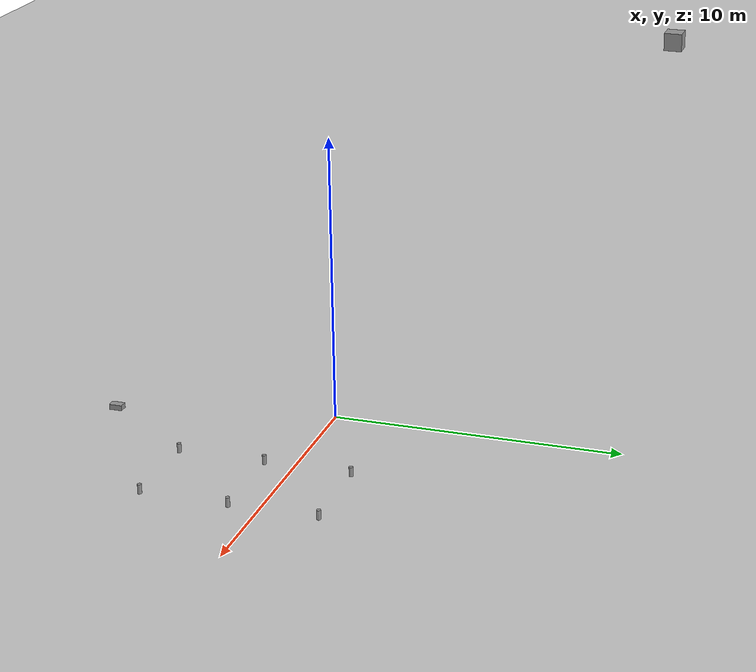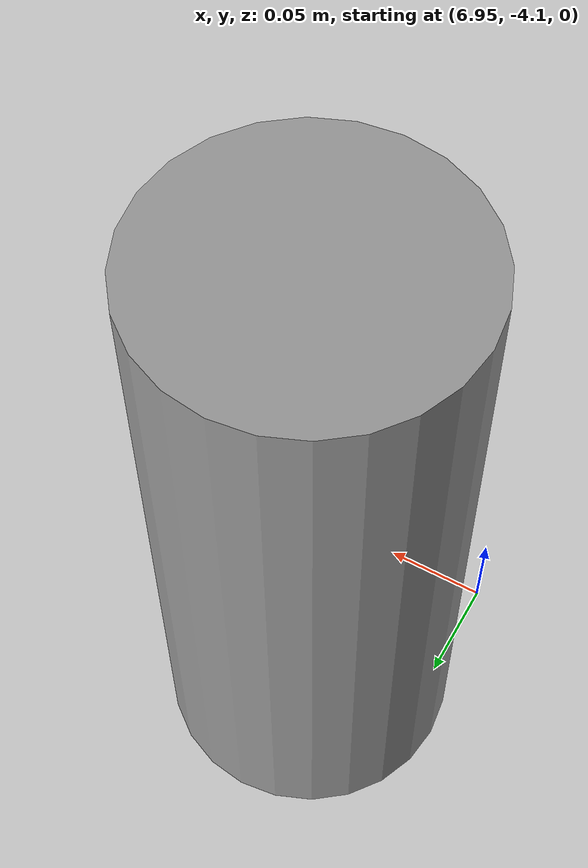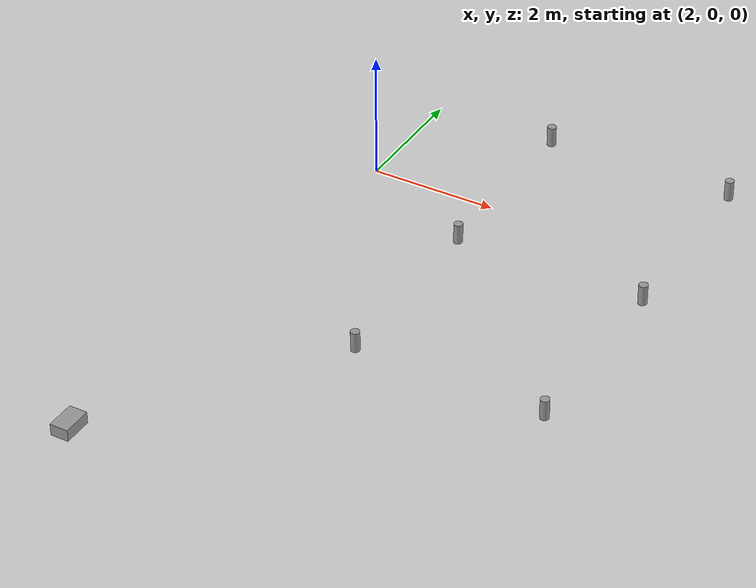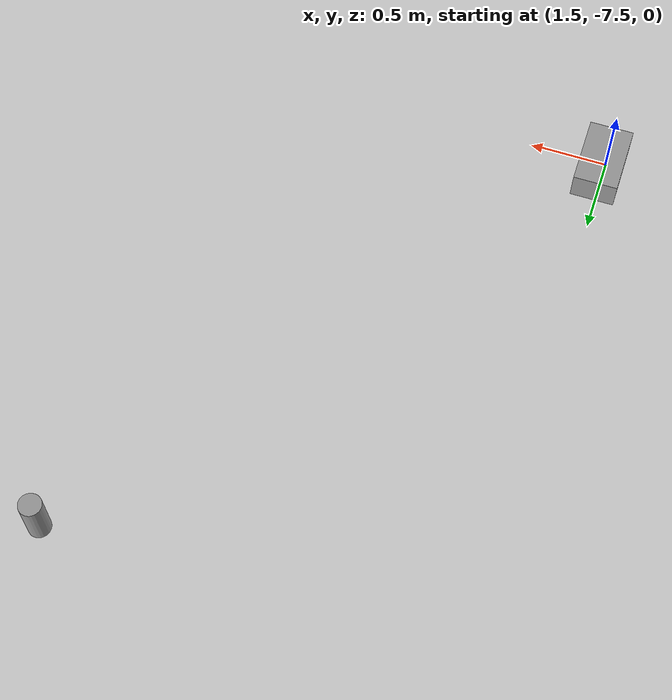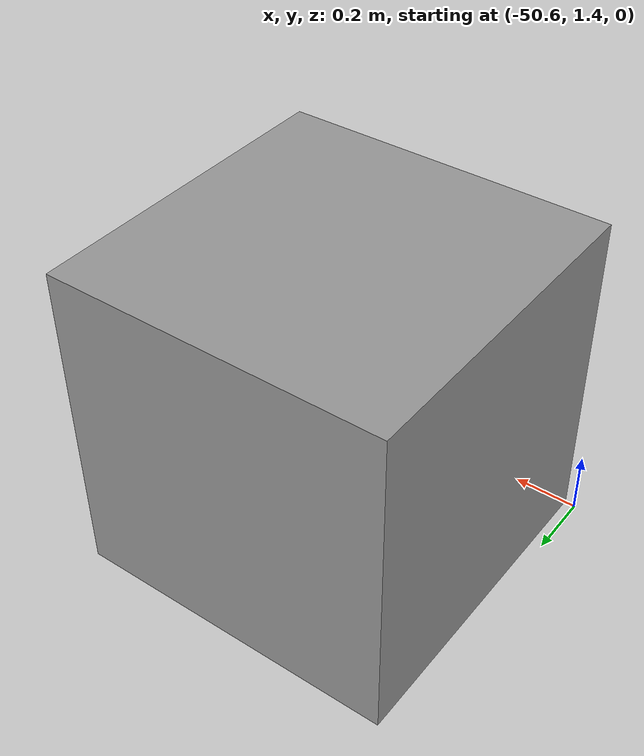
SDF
<sdf version="1.6">
 <world name="default">
  <light name="sun" type="directional">
   <pose>0 0 10 0 -0 0</pose>
   <diffuse>0.8 0.8 0.8 1</diffuse>
   <specular>0.1 0.1 0.1 1</specular>
   <attenuation>
    <range>1000</range>
    <constant>0.9</constant>
    <linear>0.01</linear>
    <quadratic>0.001</quadratic>
   </attenuation>
   <direction>-0.5 0.5 -1</direction>
  </light>
  <model name="ground_plane">
   <static>1</static>
   <link name="link">
    <collision name="collision">
     <geometry><plane><normal>0 0 1</normal><size>100 100</size></plane></geometry>
     <surface><friction><ode><mu>100</mu><mu2>50</mu2></ode></friction></surface>
    </collision>
    <visual name="visual">
     <cast_shadows>0</cast_shadows>
     <geometry><plane><normal>0 0 1</normal><size>100 100</size></plane></geometry>
     <material>
      <script><uri>file://media/materials/scripts/gazebo.material</uri><name>Gazebo/Grey</name></script>
     </material>
    </visual>
   </link>
  </model>
  <gravity>0 0 -9.8</gravity>
  <magnetic_field>6e-06 2.3e-05 -4.2e-05</magnetic_field>
  <atmosphere type="adiabatic"/>
  <physics name="default_physics" default="0" type="ode">
   <max_step_size>0.001</max_step_size>
   <real_time_factor>1</real_time_factor>
   <real_time_update_rate>1000</real_time_update_rate>
  </physics>
  <scene><ambient>0.4 0.4 0.4 1</ambient><background>0.7 0.7 0.7 1</background><shadows>1</shadows></scene>
  <spherical_coordinates>
   <surface_model>EARTH_WGS84</surface_model>
   <latitude_deg>0</latitude_deg>
   <longitude_deg>0</longitude_deg>
   <elevation>0</elevation>
   <heading_deg>0</heading_deg>
  </spherical_coordinates>
  <model name="unit_box_0">
   <pose>-50.0675 1.89431 0.499995 1e-05 -0 0</pose>
   <link name="link">
    <inertial>
     <mass>1</mass>
     <inertia>
      <ixx>0.166667</ixx>
      <ixy>0</ixy>
      <ixz>0</ixz>
      <iyy>0.166667</iyy>
      <iyz>0</iyz>
      <izz>0.166667</izz>
     </inertia>
    </inertial>
    <collision name="collision"><geometry><box><size>1 1 1</size></box></geometry></collision>
    <visual name="visual">
     <geometry><box><size>1 1 1</size></box></geometry>
     <material>
      <script><name>Gazebo/Grey</name><uri>file://media/materials/scripts/gazebo.material</uri></script>
     </material>
    </visual>
   </link>
  </model>
  <model name="unit_cylinder_0_clone_clone">
   <pose>6.99505 2.00481 0.163829 0 -0 0</pose>
   <link name="link">
    <inertial>
     <mass>1</mass>
     <inertia><ixx>0.145833</ixx><ixy>0</ixy><ixz>0</ixz><iyy>0.145833</iyy><iyz>0</iyz><izz>0.125</izz></inertia>
    </inertial>
    <collision name="collision">
     <geometry><cylinder><radius>0.069975</radius><length>0.327677</length></cylinder></geometry>
    </collision>
    <visual name="visual">
     <geometry><cylinder><radius>0.069975</radius><length>0.327677</length></cylinder></geometry>
     <material>
      <script><name>Gazebo/Grey</name><uri>file://media/materials/scripts/gazebo.material</uri></script>
     </material>
    </visual>
   </link>
  </model>
  <model name="unit_cylinder_0_clone_1">
   <pose>3.98584 -1.00636 0.163829 0 -0 0</pose>
   <link name="link">
    <inertial>
     <mass>1</mass>
     <inertia><ixx>0.145833</ixx><ixy>0</ixy><ixz>0</ixz><iyy>0.145833</iyy><iyz>0</iyz><izz>0.125</izz></inertia>
    </inertial>
    <collision name="collision">
     <geometry><cylinder><radius>0.069975</radius><length>0.327677</length></cylinder></geometry>
    </collision>
    <visual name="visual">
     <geometry><cylinder><radius>0.069975</radius><length>0.327677</length></cylinder></geometry>
     <material>
      <script><name>Gazebo/Grey</name><uri>file://media/materials/scripts/gazebo.material</uri></script>
     </material>
    </visual>
   </link>
  </model>
  <model name="unit_cylinder_0_clone_2">
   <pose>3.98443 1.98399 0.163829 0 -0 0</pose>
   <link name="link">
    <inertial>
     <mass>1</mass>
     <inertia><ixx>0.145833</ixx><ixy>0</ixy><ixz>0</ixz><iyy>0.145833</iyy><iyz>0</iyz><izz>0.125</izz></inertia>
    </inertial>
    <collision name="collision">
     <geometry><cylinder><radius>0.069975</radius><length>0.327677</length></cylinder></geometry>
    </collision>
    <visual name="visual">
     <geometry><cylinder><radius>0.069975</radius><length>0.327677</length></cylinder></geometry>
     <material>
      <script><name>Gazebo/Grey</name><uri>file://media/materials/scripts/gazebo.material</uri></script>
     </material>
    </visual>
   </link>
  </model>
  <model name="unit_cylinder_0_clone_clone_clone">
   <pose>7.02107 -1.0095 0.163829 0 -0 0</pose>
   <link name="link">
    <inertial>
     <mass>1</mass>
     <inertia><ixx>0.145833</ixx><ixy>0</ixy><ixz>0</ixz><iyy>0.145833</iyy><iyz>0</iyz><izz>0.125</izz></inertia>
    </inertial>
    <collision name="collision">
     <geometry><cylinder><radius>0.069975</radius><length>0.327677</length></cylinder></geometry>
    </collision>
    <visual name="visual">
     <geometry><cylinder><radius>0.069975</radius><length>0.327677</length></cylinder></geometry>
     <material>
      <script><name>Gazebo/Grey</name><uri>file://media/materials/scripts/gazebo.material</uri></script>
     </material>
    </visual>
   </link>
  </model>
  <model name="unit_cylinder_0_clone_clone_clone_0">
   <pose>3.9985 -4.00714 0.163829 0 -0 0</pose>
   <link name="link">
    <inertial>
     <mass>1</mass>
     <inertia><ixx>0.145833</ixx><ixy>0</ixy><ixz>0</ixz><iyy>0.145833</iyy><iyz>0</iyz><izz>0.125</izz></inertia>
    </inertial>
    <collision name="collision">
     <geometry><cylinder><radius>0.069975</radius><length>0.327677</length></cylinder></geometry>
    </collision>
    <visual name="visual">
     <geometry><cylinder><radius>0.069975</radius><length>0.327677</length></cylinder></geometry>
     <material>
      <script><name>Gazebo/Grey</name><uri>file://media/materials/scripts/gazebo.material</uri></script>
     </material>
    </visual>
   </link>
  </model>
  <model name="unit_cylinder_0_clone_clone_clone_1">
   <pose>7.00582 -4.01788 0.163838 0 -0 0</pose>
   <link name="link">
    <inertial>
     <mass>1</mass>
     <inertia><ixx>0.145833</ixx><ixy>0</ixy><ixz>0</ixz><iyy>0.145833</iyy><iyz>0</iyz><izz>0.125</izz></inertia>
    </inertial>
    <collision name="collision">
     <geometry><cylinder><radius>0.069975</radius><length>0.327677</length></cylinder></geometry>
    </collision>
    <visual name="visual">
     <geometry><cylinder><radius>0.069975</radius><length>0.327677</length></cylinder></geometry>
     <material>
      <script><name>Gazebo/Grey</name><uri>file://media/materials/scripts/gazebo.material</uri></script>
     </material>
    </visual>
   </link>
  </model>
  <model name="unit_box_1">
   <pose>1.52445 -7.43714 0.094146 0 -0 0</pose>
   <link name="link">
    <inertial>
     <mass>1</mass>
     <inertia>
      <ixx>0.166667</ixx>
      <ixy>0</ixy>
      <ixz>0</ixz>
      <iyy>0.166667</iyy>
      <iyz>0</iyz>
      <izz>0.166667</izz>
     </inertia>
    </inertial>
    <collision name="collision">
     <geometry><box><size>0.285116 0.458599 0.188292</size></box></geometry>
    </collision>
    <visual name="visual">
     <geometry><box><size>0.285116 0.458599 0.188292</size></box></geometry>
     <material>
      <script><name>Gazebo/Grey</name><uri>file://media/materials/scripts/gazebo.material</uri></script>
     </material>
    </visual>
   </link>
  </model>
 </world>
</sdf>
